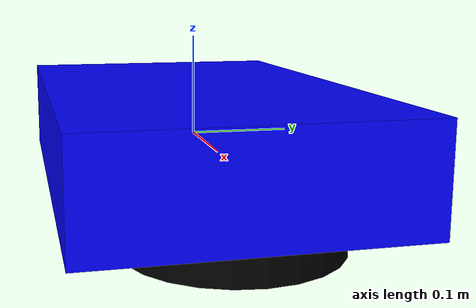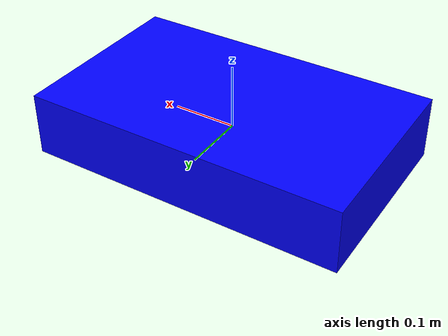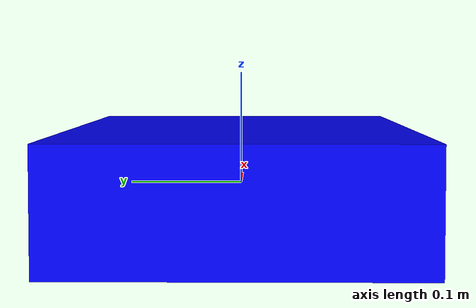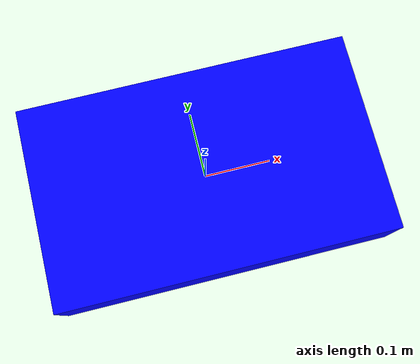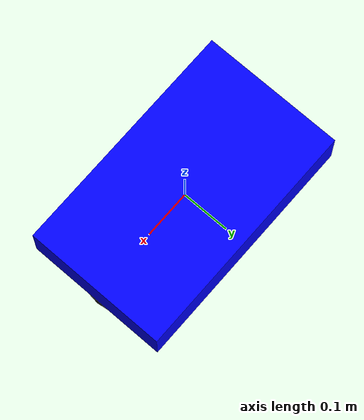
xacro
<?xml version="1.0"?>
<robot name="simple_mobile_robot" xmlns:xacro="http://www.ros.org/wiki/xacro">
  <!-- Properties -->
  <xacro:property name="M_PI" value="3.1415926535897931"/>
  <xacro:property name="wheel_radius" value="0.1"/>
  <xacro:property name="wheel_width" value="0.05"/>
  <xacro:property name="base_length" value="0.5"/>
  <xacro:property name="base_width" value="0.3"/>
  <xacro:property name="base_height" value="0.1"/>

  <!-- Base link -->
  <link name="base_link">
    <visual>
      <geometry>
        <box size="${base_length} ${base_width} ${base_height}"/>
      </geometry>
      <material name="blue">
        <color rgba="0 0 1 1"/>
      </material>
    </visual>
    <collision>
      <geometry>
        <box size="${base_length} ${base_width} ${base_height}"/>
      </geometry>
    </collision>
    <inertial>
      <mass value="1.0"/>
      <inertia ixx="0.1" ixy="0" ixz="0" iyy="0.1" iyz="0" izz="0.1"/>
    </inertial>
  </link>

  <!-- Left wheel -->
  <link name="left_wheel">
    <visual>
      <geometry>
        <cylinder radius="${wheel_radius}" length="${wheel_width}"/>
      </geometry>
      <material name="black">
        <color rgba="0 0 0 1"/>
      </material>
    </visual>
    <collision>
      <geometry>
        <cylinder radius="${wheel_radius}" length="${wheel_width}"/>
      </geometry>
    </collision>
    <inertial>
      <mass value="0.2"/>
      <inertia ixx="0.001" ixy="0" ixz="0" iyy="0.001" iyz="0" izz="0.002"/>
    </inertial>
  </link>

  <!-- Right wheel -->
  <link name="right_wheel">
    <visual>
      <geometry>
        <cylinder radius="${wheel_radius}" length="${wheel_width}"/>
      </geometry>
      <material name="black">
        <color rgba="0 0 0 1"/>
      </material>
    </visual>
    <collision>
      <geometry>
        <cylinder radius="${wheel_radius}" length="${wheel_width}"/>
      </geometry>
    </collision>
    <inertial>
      <mass value="0.2"/>
      <inertia ixx="0.001" ixy="0" ixz="0" iyy="0.001" iyz="0" izz="0.002"/>
    </inertial>
  </link>

  <!-- Joints -->
  <joint name="left_wheel_joint" type="continuous">
    <parent link="base_link"/>
    <child link="left_wheel"/>
    <origin xyz="${base_length/2 - wheel_radius} 0 -${base_height/2}" rpy="0 0 0"/>
    <axis xyz="0 1 0"/>
  </joint>

  <joint name="right_wheel_joint" type="continuous">
    <parent link="base_link"/>
    <child link="right_wheel"/>
    <origin xyz="${base_length/2 - wheel_radius} 0 -${base_height/2}" rpy="0 0 0"/>
    <axis xyz="0 1 0"/>
  </joint>

  <!-- Gazebo plugins -->
  <gazebo>
    <plugin name="diff_drive" filename="libgazebo_ros_diff_drive.so">
      <left_joint>left_wheel_joint</left_joint>
      <right_joint>right_wheel_joint</right_joint>
      <wheel_separation>0.3</wheel_separation>
      <wheel_diameter>0.2</wheel_diameter>
      <max_wheel_torque>20</max_wheel_torque>
      <max_wheel_acceleration>1.0</max_wheel_acceleration>
      <command_topic>cmd_vel</command_topic>
      <odometry_topic>odom</odometry_topic>
      <odometry_frame>odom</odometry_frame>
      <robot_base_frame>base_link</robot_base_frame>
      <publish_odom>true</publish_odom>
      <publish_wheel_tf>true</publish_wheel_tf>
      <publish_odom_tf>true</publish_odom_tf>
    </plugin>
  </gazebo>

  <gazebo reference="base_link">
    <material>Gazebo/Blue</material>
  </gazebo>

  <gazebo reference="left_wheel">
    <material>Gazebo/Black</material>
  </gazebo>

  <gazebo reference="right_wheel">
    <material>Gazebo/Black</material>
  </gazebo>
</robot>
